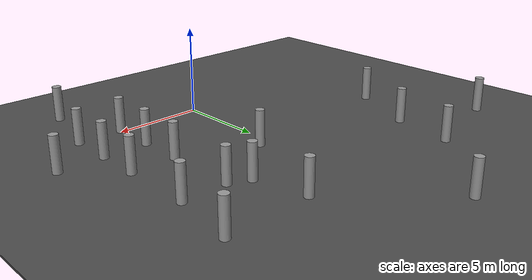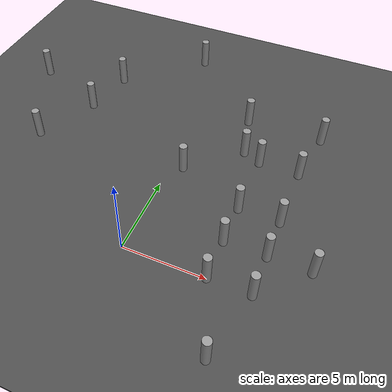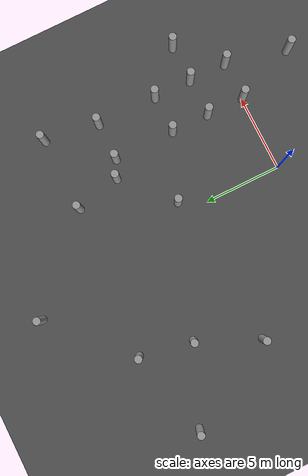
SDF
<sdf version="1.6">
 <world name="default">
  <model name="ground_plane">
   <static>1</static>
   <link name="link">
    <collision name="collision">
     <geometry><plane><normal>0 0 1</normal><size>100 100</size></plane></geometry>
     <surface><friction><ode><mu>100</mu><mu2>50</mu2></ode></friction></surface>
    </collision>
    <visual name="visual">
     <cast_shadows>0</cast_shadows>
     <geometry><plane><normal>0 0 1</normal><size>100 100</size></plane></geometry>
     <material>
      <script><uri>file://media/materials/scripts/gazebo.material</uri><name>Gazebo/Grey</name></script>
     </material>
    </visual>
   </link>
  </model>
  <model name="asphalt_plane_0">
   <link name="link">
    <inertial>
     <mass>1</mass>
     <inertia><ixx>1</ixx><ixy>0</ixy><ixz>0</ixz><iyy>1</iyy><iyz>0</iyz><izz>1</izz></inertia>
    </inertial>
    <visual name="visual">
     <cast_shadows>0</cast_shadows>
     <geometry><box><size>100 100 0.1</size></box></geometry>
     <material>
      <script>
       <uri>model://asphalt_plane/materials/scripts</uri>
       <uri>model://asphalt_plane/materials/textures</uri>
       <name>vrc/asphalt</name>
      </script>
      <ambient>0.5 0.5 0.5 1</ambient>
      <diffuse>0.5 0.5 0.5 1</diffuse>
      <specular>0.2 0.2 0.2 1</specular>
      <emissive>0 0 0 1</emissive>
      <shader type="vertex"><normal_map>__default__</normal_map></shader>
     </material>
    </visual>
    <collision name="collision">
     <geometry><box><size>100 100 0.1</size></box></geometry>
     <surface>
      <friction>
       <ode><mu>1</mu><mu2>1</mu2><fdir1>0 0 0</fdir1><slip1>0</slip1><slip2>0</slip2></ode>
       <torsional>
        <coefficient>1</coefficient>
        <patch_radius>0</patch_radius>
        <surface_radius>0</surface_radius>
        <use_patch_radius>1</use_patch_radius>
        <ode><slip>0</slip></ode>
       </torsional>
      </friction>
      <bounce><restitution_coefficient>0</restitution_coefficient><threshold>1e+06</threshold></bounce>
      <contact>
       <collide_without_contact>0</collide_without_contact>
       <collide_without_contact_bitmask>1</collide_without_contact_bitmask>
       <collide_bitmask>1</collide_bitmask>
       <ode>
        <soft_cfm>0</soft_cfm>
        <soft_erp>0.2</soft_erp>
        <kp>1e+13</kp>
        <kd>1</kd>
        <max_vel>0.01</max_vel>
        <min_depth>0</min_depth>
       </ode>
       <bullet>
        <split_impulse>1</split_impulse>
        <split_impulse_penetration_threshold>-0.01</split_impulse_penetration_threshold>
        <soft_cfm>0</soft_cfm>
        <soft_erp>0.2</soft_erp>
        <kp>1e+13</kp>
        <kd>1</kd>
       </bullet>
      </contact>
     </surface>
    </collision>
   </link>
   <static>1</static>
   <pose>-0.137833 0.204655 0 0 -0 0</pose>
  </model>
  <model name="vps_sim_obstacle">
   <link name="link">
    <inertial>
     <mass>1</mass>
     <inertia><ixx>0.145833</ixx><ixy>0</ixy><ixz>0</ixz><iyy>0.145833</iyy><iyz>0</iyz><izz>0.125</izz></inertia>
    </inertial>
    <visual name="visual">
     <geometry><cylinder><radius>0.25</radius><length>2</length></cylinder></geometry>
     <material>
      <script><name>Gazebo/Grey</name><uri>file://media/materials/scripts/gazebo.material</uri></script>
      <ambient>0.3 0.3 0.3 1</ambient>
      <diffuse>0.7 0.7 0.7 1</diffuse>
      <specular>0.01 0.01 0.01 1</specular>
      <emissive>0 0 0 1</emissive>
      <shader type="vertex"><normal_map>__default__</normal_map></shader>
     </material>
    </visual>
    <collision name="collision">
     <geometry><cylinder><radius>0.25</radius><length>2</length></cylinder></geometry>
     <surface>
      <friction>
       <ode><mu>1</mu><mu2>1</mu2><fdir1>0 0 0</fdir1><slip1>0</slip1><slip2>0</slip2></ode>
       <torsional>
        <coefficient>1</coefficient>
        <patch_radius>0</patch_radius>
        <surface_radius>0</surface_radius>
        <use_patch_radius>1</use_patch_radius>
        <ode><slip>0</slip></ode>
       </torsional>
      </friction>
      <bounce><restitution_coefficient>0</restitution_coefficient><threshold>1e+06</threshold></bounce>
      <contact>
       <collide_without_contact>0</collide_without_contact>
       <collide_without_contact_bitmask>1</collide_without_contact_bitmask>
       <collide_bitmask>1</collide_bitmask>
       <ode>
        <soft_cfm>0</soft_cfm>
        <soft_erp>0.2</soft_erp>
        <kp>1e+13</kp>
        <kd>1</kd>
        <max_vel>0.01</max_vel>
        <min_depth>0</min_depth>
       </ode>
       <bullet>
        <split_impulse>1</split_impulse>
        <split_impulse_penetration_threshold>-0.01</split_impulse_penetration_threshold>
        <soft_cfm>0</soft_cfm>
        <soft_erp>0.2</soft_erp>
        <kp>1e+13</kp>
        <kd>1</kd>
       </bullet>
      </contact>
     </surface>
    </collision>
   </link>
   <static>0</static>
   <pose>5.00167 -0.001811 1.05001 -1.9e-05 8e-06 0.033451</pose>
  </model>
  <model name="vps_sim_obstacle_1">
   <link name="link">
    <inertial>
     <mass>1</mass>
     <inertia><ixx>0.145833</ixx><ixy>0</ixy><ixz>0</ixz><iyy>0.145833</iyy><iyz>0</iyz><izz>0.125</izz></inertia>
    </inertial>
    <visual name="visual">
     <geometry><cylinder><radius>0.25</radius><length>2</length></cylinder></geometry>
     <material>
      <script><name>Gazebo/Grey</name><uri>file://media/materials/scripts/gazebo.material</uri></script>
      <ambient>0.3 0.3 0.3 1</ambient>
      <diffuse>0.7 0.7 0.7 1</diffuse>
      <specular>0.01 0.01 0.01 1</specular>
      <emissive>0 0 0 1</emissive>
      <shader type="vertex"><normal_map>__default__</normal_map></shader>
     </material>
    </visual>
    <collision name="collision">
     <geometry><cylinder><radius>0.25</radius><length>2</length></cylinder></geometry>
     <surface>
      <friction>
       <ode><mu>1</mu><mu2>1</mu2><fdir1>0 0 0</fdir1><slip1>0</slip1><slip2>0</slip2></ode>
       <torsional>
        <coefficient>1</coefficient>
        <patch_radius>0</patch_radius>
        <surface_radius>0</surface_radius>
        <use_patch_radius>1</use_patch_radius>
        <ode><slip>0</slip></ode>
       </torsional>
      </friction>
      <bounce><restitution_coefficient>0</restitution_coefficient><threshold>1e+06</threshold></bounce>
      <contact>
       <collide_without_contact>0</collide_without_contact>
       <collide_without_contact_bitmask>1</collide_without_contact_bitmask>
       <collide_bitmask>1</collide_bitmask>
       <ode>
        <soft_cfm>0</soft_cfm>
        <soft_erp>0.2</soft_erp>
        <kp>1e+13</kp>
        <kd>1</kd>
        <max_vel>0.01</max_vel>
        <min_depth>0</min_depth>
       </ode>
       <bullet>
        <split_impulse>1</split_impulse>
        <split_impulse_penetration_threshold>-0.01</split_impulse_penetration_threshold>
        <soft_cfm>0</soft_cfm>
        <soft_erp>0.2</soft_erp>
        <kp>1e+13</kp>
        <kd>1</kd>
       </bullet>
      </contact>
     </surface>
    </collision>
   </link>
   <static>0</static>
   <pose>5.00232 8.99749 1.04999 -2.7e-05 1.8e-05 0.034468</pose>
  </model>
  <model name="vps_sim_obstacle_2">
   <link name="link">
    <inertial>
     <mass>1</mass>
     <inertia><ixx>0.145833</ixx><ixy>0</ixy><ixz>0</ixz><iyy>0.145833</iyy><iyz>0</iyz><izz>0.125</izz></inertia>
    </inertial>
    <visual name="visual">
     <geometry><cylinder><radius>0.25</radius><length>2</length></cylinder></geometry>
     <material>
      <script><name>Gazebo/Grey</name><uri>file://media/materials/scripts/gazebo.material</uri></script>
      <ambient>0.3 0.3 0.3 1</ambient>
      <diffuse>0.7 0.7 0.7 1</diffuse>
      <specular>0.01 0.01 0.01 1</specular>
      <emissive>0 0 0 1</emissive>
      <shader type="vertex"><normal_map>__default__</normal_map></shader>
     </material>
    </visual>
    <collision name="collision">
     <geometry><cylinder><radius>0.25</radius><length>2</length></cylinder></geometry>
     <surface>
      <friction>
       <ode><mu>1</mu><mu2>1</mu2><fdir1>0 0 0</fdir1><slip1>0</slip1><slip2>0</slip2></ode>
       <torsional>
        <coefficient>1</coefficient>
        <patch_radius>0</patch_radius>
        <surface_radius>0</surface_radius>
        <use_patch_radius>1</use_patch_radius>
        <ode><slip>0</slip></ode>
       </torsional>
      </friction>
      <bounce><restitution_coefficient>0</restitution_coefficient><threshold>1e+06</threshold></bounce>
      <contact>
       <collide_without_contact>0</collide_without_contact>
       <collide_without_contact_bitmask>1</collide_without_contact_bitmask>
       <collide_bitmask>1</collide_bitmask>
       <ode>
        <soft_cfm>0</soft_cfm>
        <soft_erp>0.2</soft_erp>
        <kp>1e+13</kp>
        <kd>1</kd>
        <max_vel>0.01</max_vel>
        <min_depth>0</min_depth>
       </ode>
       <bullet>
        <split_impulse>1</split_impulse>
        <split_impulse_penetration_threshold>-0.01</split_impulse_penetration_threshold>
        <soft_cfm>0</soft_cfm>
        <soft_erp>0.2</soft_erp>
        <kp>1e+13</kp>
        <kd>1</kd>
       </bullet>
      </contact>
     </surface>
    </collision>
   </link>
   <static>0</static>
   <pose>7.50166 -0.001786 1.04996 -1e-06 3e-06 0.0403</pose>
  </model>
  <model name="vps_sim_obstacle_6">
   <link name="link">
    <inertial>
     <mass>1</mass>
     <inertia><ixx>0.145833</ixx><ixy>0</ixy><ixz>0</ixz><iyy>0.145833</iyy><iyz>0</iyz><izz>0.125</izz></inertia>
    </inertial>
    <visual name="visual">
     <geometry><cylinder><radius>0.25</radius><length>2</length></cylinder></geometry>
     <material>
      <script><name>Gazebo/Grey</name><uri>file://media/materials/scripts/gazebo.material</uri></script>
      <ambient>0.3 0.3 0.3 1</ambient>
      <diffuse>0.7 0.7 0.7 1</diffuse>
      <specular>0.01 0.01 0.01 1</specular>
      <emissive>0 0 0 1</emissive>
      <shader type="vertex"><normal_map>__default__</normal_map></shader>
     </material>
    </visual>
    <collision name="collision">
     <geometry><cylinder><radius>0.25</radius><length>2</length></cylinder></geometry>
     <surface>
      <friction>
       <ode><mu>1</mu><mu2>1</mu2><fdir1>0 0 0</fdir1><slip1>0</slip1><slip2>0</slip2></ode>
       <torsional>
        <coefficient>1</coefficient>
        <patch_radius>0</patch_radius>
        <surface_radius>0</surface_radius>
        <use_patch_radius>1</use_patch_radius>
        <ode><slip>0</slip></ode>
       </torsional>
      </friction>
      <bounce><restitution_coefficient>0</restitution_coefficient><threshold>1e+06</threshold></bounce>
      <contact>
       <collide_without_contact>0</collide_without_contact>
       <collide_without_contact_bitmask>1</collide_without_contact_bitmask>
       <collide_bitmask>1</collide_bitmask>
       <ode>
        <soft_cfm>0</soft_cfm>
        <soft_erp>0.2</soft_erp>
        <kp>1e+13</kp>
        <kd>1</kd>
        <max_vel>0.01</max_vel>
        <min_depth>0</min_depth>
       </ode>
       <bullet>
        <split_impulse>1</split_impulse>
        <split_impulse_penetration_threshold>-0.01</split_impulse_penetration_threshold>
        <soft_cfm>0</soft_cfm>
        <soft_erp>0.2</soft_erp>
        <kp>1e+13</kp>
        <kd>1</kd>
       </bullet>
      </contact>
     </surface>
    </collision>
   </link>
   <static>0</static>
   <pose>5.00177 2.49792 1.04997 -1.6e-05 2e-05 0.032816</pose>
  </model>
  <model name="vps_sim_obstacle_7">
   <link name="link">
    <inertial>
     <mass>1</mass>
     <inertia><ixx>0.145833</ixx><ixy>0</ixy><ixz>0</ixz><iyy>0.145833</iyy><iyz>0</iyz><izz>0.125</izz></inertia>
    </inertial>
    <visual name="visual">
     <geometry><cylinder><radius>0.25</radius><length>2</length></cylinder></geometry>
     <material>
      <script><name>Gazebo/Grey</name><uri>file://media/materials/scripts/gazebo.material</uri></script>
      <ambient>0.3 0.3 0.3 1</ambient>
      <diffuse>0.7 0.7 0.7 1</diffuse>
      <specular>0.01 0.01 0.01 1</specular>
      <emissive>0 0 0 1</emissive>
      <shader type="vertex"><normal_map>__default__</normal_map></shader>
     </material>
    </visual>
    <collision name="collision">
     <geometry><cylinder><radius>0.25</radius><length>2</length></cylinder></geometry>
     <surface>
      <friction>
       <ode><mu>1</mu><mu2>1</mu2><fdir1>0 0 0</fdir1><slip1>0</slip1><slip2>0</slip2></ode>
       <torsional>
        <coefficient>1</coefficient>
        <patch_radius>0</patch_radius>
        <surface_radius>0</surface_radius>
        <use_patch_radius>1</use_patch_radius>
        <ode><slip>0</slip></ode>
       </torsional>
      </friction>
      <bounce><restitution_coefficient>0</restitution_coefficient><threshold>1e+06</threshold></bounce>
      <contact>
       <collide_without_contact>0</collide_without_contact>
       <collide_without_contact_bitmask>1</collide_without_contact_bitmask>
       <collide_bitmask>1</collide_bitmask>
       <ode>
        <soft_cfm>0</soft_cfm>
        <soft_erp>0.2</soft_erp>
        <kp>1e+13</kp>
        <kd>1</kd>
        <max_vel>0.01</max_vel>
        <min_depth>0</min_depth>
       </ode>
       <bullet>
        <split_impulse>1</split_impulse>
        <split_impulse_penetration_threshold>-0.01</split_impulse_penetration_threshold>
        <soft_cfm>0</soft_cfm>
        <soft_erp>0.2</soft_erp>
        <kp>1e+13</kp>
        <kd>1</kd>
       </bullet>
      </contact>
     </surface>
    </collision>
   </link>
   <static>0</static>
   <pose>7.50156 2.49795 1.05 0 6e-06 0.041498</pose>
  </model>
  <model name="vps_sim_obstacle_8">
   <link name="link">
    <inertial>
     <mass>1</mass>
     <inertia><ixx>0.145833</ixx><ixy>0</ixy><ixz>0</ixz><iyy>0.145833</iyy><iyz>0</iyz><izz>0.125</izz></inertia>
    </inertial>
    <visual name="visual">
     <geometry><cylinder><radius>0.25</radius><length>2</length></cylinder></geometry>
     <material>
      <script><name>Gazebo/Grey</name><uri>file://media/materials/scripts/gazebo.material</uri></script>
      <ambient>0.3 0.3 0.3 1</ambient>
      <diffuse>0.7 0.7 0.7 1</diffuse>
      <specular>0.01 0.01 0.01 1</specular>
      <emissive>0 0 0 1</emissive>
      <shader type="vertex"><normal_map>__default__</normal_map></shader>
     </material>
    </visual>
    <collision name="collision">
     <geometry><cylinder><radius>0.25</radius><length>2</length></cylinder></geometry>
     <surface>
      <friction>
       <ode><mu>1</mu><mu2>1</mu2><fdir1>0 0 0</fdir1><slip1>0</slip1><slip2>0</slip2></ode>
       <torsional>
        <coefficient>1</coefficient>
        <patch_radius>0</patch_radius>
        <surface_radius>0</surface_radius>
        <use_patch_radius>1</use_patch_radius>
        <ode><slip>0</slip></ode>
       </torsional>
      </friction>
      <bounce><restitution_coefficient>0</restitution_coefficient><threshold>1e+06</threshold></bounce>
      <contact>
       <collide_without_contact>0</collide_without_contact>
       <collide_without_contact_bitmask>1</collide_without_contact_bitmask>
       <collide_bitmask>1</collide_bitmask>
       <ode>
        <soft_cfm>0</soft_cfm>
        <soft_erp>0.2</soft_erp>
        <kp>1e+13</kp>
        <kd>1</kd>
        <max_vel>0.01</max_vel>
        <min_depth>0</min_depth>
       </ode>
       <bullet>
        <split_impulse>1</split_impulse>
        <split_impulse_penetration_threshold>-0.01</split_impulse_penetration_threshold>
        <soft_cfm>0</soft_cfm>
        <soft_erp>0.2</soft_erp>
        <kp>1e+13</kp>
        <kd>1</kd>
       </bullet>
      </contact>
     </surface>
    </collision>
   </link>
   <static>0</static>
   <pose>10.0016 2.49806 1.04998 7e-06 1e-06 0.045175</pose>
  </model>
  <model name="vps_sim_obstacle_11">
   <link name="link">
    <inertial>
     <mass>1</mass>
     <inertia><ixx>0.145833</ixx><ixy>0</ixy><ixz>0</ixz><iyy>0.145833</iyy><iyz>0</iyz><izz>0.125</izz></inertia>
    </inertial>
    <visual name="visual">
     <geometry><cylinder><radius>0.25</radius><length>2</length></cylinder></geometry>
     <material>
      <script><name>Gazebo/Grey</name><uri>file://media/materials/scripts/gazebo.material</uri></script>
      <ambient>0.3 0.3 0.3 1</ambient>
      <diffuse>0.7 0.7 0.7 1</diffuse>
      <specular>0.01 0.01 0.01 1</specular>
      <emissive>0 0 0 1</emissive>
      <shader type="vertex"><normal_map>__default__</normal_map></shader>
     </material>
    </visual>
    <collision name="collision">
     <geometry><cylinder><radius>0.25</radius><length>2</length></cylinder></geometry>
     <surface>
      <friction>
       <ode><mu>1</mu><mu2>1</mu2><fdir1>0 0 0</fdir1><slip1>0</slip1><slip2>0</slip2></ode>
       <torsional>
        <coefficient>1</coefficient>
        <patch_radius>0</patch_radius>
        <surface_radius>0</surface_radius>
        <use_patch_radius>1</use_patch_radius>
        <ode><slip>0</slip></ode>
       </torsional>
      </friction>
      <bounce><restitution_coefficient>0</restitution_coefficient><threshold>1e+06</threshold></bounce>
      <contact>
       <collide_without_contact>0</collide_without_contact>
       <collide_without_contact_bitmask>1</collide_without_contact_bitmask>
       <collide_bitmask>1</collide_bitmask>
       <ode>
        <soft_cfm>0</soft_cfm>
        <soft_erp>0.2</soft_erp>
        <kp>1e+13</kp>
        <kd>1</kd>
        <max_vel>0.01</max_vel>
        <min_depth>0</min_depth>
       </ode>
       <bullet>
        <split_impulse>1</split_impulse>
        <split_impulse_penetration_threshold>-0.01</split_impulse_penetration_threshold>
        <soft_cfm>0</soft_cfm>
        <soft_erp>0.2</soft_erp>
        <kp>1e+13</kp>
        <kd>1</kd>
       </bullet>
      </contact>
     </surface>
    </collision>
   </link>
   <static>0</static>
   <pose>5.00194 4.99772 1.04996 -4e-06 4e-06 0.019612</pose>
  </model>
  <model name="vps_sim_obstacle_12">
   <link name="link">
    <inertial>
     <mass>1</mass>
     <inertia><ixx>0.145833</ixx><ixy>0</ixy><ixz>0</ixz><iyy>0.145833</iyy><iyz>0</iyz><izz>0.125</izz></inertia>
    </inertial>
    <visual name="visual">
     <geometry><cylinder><radius>0.25</radius><length>2</length></cylinder></geometry>
     <material>
      <script><name>Gazebo/Grey</name><uri>file://media/materials/scripts/gazebo.material</uri></script>
      <ambient>0.3 0.3 0.3 1</ambient>
      <diffuse>0.7 0.7 0.7 1</diffuse>
      <specular>0.01 0.01 0.01 1</specular>
      <emissive>0 0 0 1</emissive>
      <shader type="vertex"><normal_map>__default__</normal_map></shader>
     </material>
    </visual>
    <collision name="collision">
     <geometry><cylinder><radius>0.25</radius><length>2</length></cylinder></geometry>
     <surface>
      <friction>
       <ode><mu>1</mu><mu2>1</mu2><fdir1>0 0 0</fdir1><slip1>0</slip1><slip2>0</slip2></ode>
       <torsional>
        <coefficient>1</coefficient>
        <patch_radius>0</patch_radius>
        <surface_radius>0</surface_radius>
        <use_patch_radius>1</use_patch_radius>
        <ode><slip>0</slip></ode>
       </torsional>
      </friction>
      <bounce><restitution_coefficient>0</restitution_coefficient><threshold>1e+06</threshold></bounce>
      <contact>
       <collide_without_contact>0</collide_without_contact>
       <collide_without_contact_bitmask>1</collide_without_contact_bitmask>
       <collide_bitmask>1</collide_bitmask>
       <ode>
        <soft_cfm>0</soft_cfm>
        <soft_erp>0.2</soft_erp>
        <kp>1e+13</kp>
        <kd>1</kd>
        <max_vel>0.01</max_vel>
        <min_depth>0</min_depth>
       </ode>
       <bullet>
        <split_impulse>1</split_impulse>
        <split_impulse_penetration_threshold>-0.01</split_impulse_penetration_threshold>
        <soft_cfm>0</soft_cfm>
        <soft_erp>0.2</soft_erp>
        <kp>1e+13</kp>
        <kd>1</kd>
       </bullet>
      </contact>
     </surface>
    </collision>
   </link>
   <static>0</static>
   <pose>7.50185 4.99791 1.05001 -1.7e-05 2.3e-05 0.033569</pose>
  </model>
  <model name="vps_sim_obstacle_16">
   <link name="link">
    <inertial>
     <mass>1</mass>
     <inertia><ixx>0.145833</ixx><ixy>0</ixy><ixz>0</ixz><iyy>0.145833</iyy><iyz>0</iyz><izz>0.125</izz></inertia>
    </inertial>
    <visual name="visual">
     <geometry><cylinder><radius>0.25</radius><length>2</length></cylinder></geometry>
     <material>
      <script><name>Gazebo/Grey</name><uri>file://media/materials/scripts/gazebo.material</uri></script>
      <ambient>0.3 0.3 0.3 1</ambient>
      <diffuse>0.7 0.7 0.7 1</diffuse>
      <specular>0.01 0.01 0.01 1</specular>
      <emissive>0 0 0 1</emissive>
      <shader type="vertex"><normal_map>__default__</normal_map></shader>
     </material>
    </visual>
    <collision name="collision">
     <geometry><cylinder><radius>0.25</radius><length>2</length></cylinder></geometry>
     <surface>
      <friction>
       <ode><mu>1</mu><mu2>1</mu2><fdir1>0 0 0</fdir1><slip1>0</slip1><slip2>0</slip2></ode>
       <torsional>
        <coefficient>1</coefficient>
        <patch_radius>0</patch_radius>
        <surface_radius>0</surface_radius>
        <use_patch_radius>1</use_patch_radius>
        <ode><slip>0</slip></ode>
       </torsional>
      </friction>
      <bounce><restitution_coefficient>0</restitution_coefficient><threshold>1e+06</threshold></bounce>
      <contact>
       <collide_without_contact>0</collide_without_contact>
       <collide_without_contact_bitmask>1</collide_without_contact_bitmask>
       <collide_bitmask>1</collide_bitmask>
       <ode>
        <soft_cfm>0</soft_cfm>
        <soft_erp>0.2</soft_erp>
        <kp>1e+13</kp>
        <kd>1</kd>
        <max_vel>0.01</max_vel>
        <min_depth>0</min_depth>
       </ode>
       <bullet>
        <split_impulse>1</split_impulse>
        <split_impulse_penetration_threshold>-0.01</split_impulse_penetration_threshold>
        <soft_cfm>0</soft_cfm>
        <soft_erp>0.2</soft_erp>
        <kp>1e+13</kp>
        <kd>1</kd>
       </bullet>
      </contact>
     </surface>
    </collision>
   </link>
   <static>0</static>
   <pose>3.85675 9.50876 1.05001 -2.2e-05 1e-05 0.050136</pose>
  </model>
  <model name="vps_sim_obstacle_19">
   <link name="link">
    <inertial>
     <mass>1</mass>
     <inertia><ixx>0.145833</ixx><ixy>0</ixy><ixz>0</ixz><iyy>0.145833</iyy><iyz>0</iyz><izz>0.125</izz></inertia>
    </inertial>
    <visual name="visual">
     <geometry><cylinder><radius>0.25</radius><length>2</length></cylinder></geometry>
     <material>
      <script><name>Gazebo/Grey</name><uri>file://media/materials/scripts/gazebo.material</uri></script>
      <ambient>0.3 0.3 0.3 1</ambient>
      <diffuse>0.7 0.7 0.7 1</diffuse>
      <specular>0.01 0.01 0.01 1</specular>
      <emissive>0 0 0 1</emissive>
      <shader type="vertex"><normal_map>__default__</normal_map></shader>
     </material>
    </visual>
    <collision name="collision">
     <geometry><cylinder><radius>0.25</radius><length>2</length></cylinder></geometry>
     <surface>
      <friction>
       <ode><mu>1</mu><mu2>1</mu2><fdir1>0 0 0</fdir1><slip1>0</slip1><slip2>0</slip2></ode>
       <torsional>
        <coefficient>1</coefficient>
        <patch_radius>0</patch_radius>
        <surface_radius>0</surface_radius>
        <use_patch_radius>1</use_patch_radius>
        <ode><slip>0</slip></ode>
       </torsional>
      </friction>
      <bounce><restitution_coefficient>0</restitution_coefficient><threshold>1e+06</threshold></bounce>
      <contact>
       <collide_without_contact>0</collide_without_contact>
       <collide_without_contact_bitmask>1</collide_without_contact_bitmask>
       <collide_bitmask>1</collide_bitmask>
       <ode>
        <soft_cfm>0</soft_cfm>
        <soft_erp>0.2</soft_erp>
        <kp>1e+13</kp>
        <kd>1</kd>
        <max_vel>0.01</max_vel>
        <min_depth>0</min_depth>
       </ode>
       <bullet>
        <split_impulse>1</split_impulse>
        <split_impulse_penetration_threshold>-0.01</split_impulse_penetration_threshold>
        <soft_cfm>0</soft_cfm>
        <soft_erp>0.2</soft_erp>
        <kp>1e+13</kp>
        <kd>1</kd>
       </bullet>
      </contact>
     </surface>
    </collision>
   </link>
   <static>0</static>
   <pose>8.07231 12.5299 1.05 -5e-06 4e-06 0.050836</pose>
  </model>
  <model name="vps_sim_obstacle_21">
   <link name="link">
    <inertial>
     <mass>1</mass>
     <inertia><ixx>0.145833</ixx><ixy>0</ixy><ixz>0</ixz><iyy>0.145833</iyy><iyz>0</iyz><izz>0.125</izz></inertia>
    </inertial>
    <visual name="visual">
     <geometry><cylinder><radius>0.25</radius><length>2</length></cylinder></geometry>
     <material>
      <script><name>Gazebo/Grey</name><uri>file://media/materials/scripts/gazebo.material</uri></script>
      <ambient>0.3 0.3 0.3 1</ambient>
      <diffuse>0.7 0.7 0.7 1</diffuse>
      <specular>0.01 0.01 0.01 1</specular>
      <emissive>0 0 0 1</emissive>
      <shader type="vertex"><normal_map>__default__</normal_map></shader>
     </material>
    </visual>
    <collision name="collision">
     <geometry><cylinder><radius>0.25</radius><length>2</length></cylinder></geometry>
     <surface>
      <friction>
       <ode><mu>1</mu><mu2>1</mu2><fdir1>0 0 0</fdir1><slip1>0</slip1><slip2>0</slip2></ode>
       <torsional>
        <coefficient>1</coefficient>
        <patch_radius>0</patch_radius>
        <surface_radius>0</surface_radius>
        <use_patch_radius>1</use_patch_radius>
        <ode><slip>0</slip></ode>
       </torsional>
      </friction>
      <bounce><restitution_coefficient>0</restitution_coefficient><threshold>1e+06</threshold></bounce>
      <contact>
       <collide_without_contact>0</collide_without_contact>
       <collide_without_contact_bitmask>1</collide_without_contact_bitmask>
       <collide_bitmask>1</collide_bitmask>
       <ode>
        <soft_cfm>0</soft_cfm>
        <soft_erp>0.2</soft_erp>
        <kp>1e+13</kp>
        <kd>1</kd>
        <max_vel>0.01</max_vel>
        <min_depth>0</min_depth>
       </ode>
       <bullet>
        <split_impulse>1</split_impulse>
        <split_impulse_penetration_threshold>-0.01</split_impulse_penetration_threshold>
        <soft_cfm>0</soft_cfm>
        <soft_erp>0.2</soft_erp>
        <kp>1e+13</kp>
        <kd>1</kd>
       </bullet>
      </contact>
     </surface>
    </collision>
   </link>
   <static>0</static>
   <pose>3.16782 12.4281 1.04998 -4e-06 1.8e-05 0.051868</pose>
  </model>
  <model name="vps_sim_obstacle_40">
   <link name="link">
    <inertial>
     <mass>1</mass>
     <inertia><ixx>0.145833</ixx><ixy>0</ixy><ixz>0</ixz><iyy>0.145833</iyy><iyz>0</iyz><izz>0.125</izz></inertia>
    </inertial>
    <visual name="visual">
     <geometry><cylinder><radius>0.25</radius><length>2</length></cylinder></geometry>
     <material>
      <script><name>Gazebo/Grey</name><uri>file://media/materials/scripts/gazebo.material</uri></script>
      <ambient>0.3 0.3 0.3 1</ambient>
      <diffuse>0.7 0.7 0.7 1</diffuse>
      <specular>0.01 0.01 0.01 1</specular>
      <emissive>0 0 0 1</emissive>
      <shader type="vertex"><normal_map>__default__</normal_map></shader>
     </material>
    </visual>
    <collision name="collision">
     <geometry><cylinder><radius>0.25</radius><length>2</length></cylinder></geometry>
     <surface>
      <friction>
       <ode><mu>1</mu><mu2>1</mu2><fdir1>0 0 0</fdir1><slip1>0</slip1><slip2>0</slip2></ode>
       <torsional>
        <coefficient>1</coefficient>
        <patch_radius>0</patch_radius>
        <surface_radius>0</surface_radius>
        <use_patch_radius>1</use_patch_radius>
        <ode><slip>0</slip></ode>
       </torsional>
      </friction>
      <bounce><restitution_coefficient>0</restitution_coefficient><threshold>1e+06</threshold></bounce>
      <contact>
       <collide_without_contact>0</collide_without_contact>
       <collide_without_contact_bitmask>1</collide_without_contact_bitmask>
       <collide_bitmask>1</collide_bitmask>
       <ode>
        <soft_cfm>0</soft_cfm>
        <soft_erp>0.2</soft_erp>
        <kp>1e+13</kp>
        <kd>1</kd>
        <max_vel>0.01</max_vel>
        <min_depth>0</min_depth>
       </ode>
       <bullet>
        <split_impulse>1</split_impulse>
        <split_impulse_penetration_threshold>-0.01</split_impulse_penetration_threshold>
        <soft_cfm>0</soft_cfm>
        <soft_erp>0.2</soft_erp>
        <kp>1e+13</kp>
        <kd>1</kd>
       </bullet>
      </contact>
     </surface>
    </collision>
   </link>
   <static>0</static>
   <pose>7.5231 8.98879 1.05001 -7e-06 -2e-05 0.053854</pose>
  </model>
  <model name="vps_sim_obstacle_42">
   <link name="link">
    <inertial>
     <mass>1</mass>
     <inertia><ixx>0.145833</ixx><ixy>0</ixy><ixz>0</ixz><iyy>0.145833</iyy><iyz>0</iyz><izz>0.125</izz></inertia>
    </inertial>
    <visual name="visual">
     <geometry><cylinder><radius>0.25</radius><length>2</length></cylinder></geometry>
     <material>
      <script><name>Gazebo/Grey</name><uri>file://media/materials/scripts/gazebo.material</uri></script>
      <ambient>0.3 0.3 0.3 1</ambient>
      <diffuse>0.7 0.7 0.7 1</diffuse>
      <specular>0.01 0.01 0.01 1</specular>
      <emissive>0 0 0 1</emissive>
      <shader type="vertex"><normal_map>__default__</normal_map></shader>
     </material>
    </visual>
    <collision name="collision">
     <geometry><cylinder><radius>0.25</radius><length>2</length></cylinder></geometry>
     <surface>
      <friction>
       <ode><mu>1</mu><mu2>1</mu2><fdir1>0 0 0</fdir1><slip1>0</slip1><slip2>0</slip2></ode>
       <torsional>
        <coefficient>1</coefficient>
        <patch_radius>0</patch_radius>
        <surface_radius>0</surface_radius>
        <use_patch_radius>1</use_patch_radius>
        <ode><slip>0</slip></ode>
       </torsional>
      </friction>
      <bounce><restitution_coefficient>0</restitution_coefficient><threshold>1e+06</threshold></bounce>
      <contact>
       <collide_without_contact>0</collide_without_contact>
       <collide_without_contact_bitmask>1</collide_without_contact_bitmask>
       <collide_bitmask>1</collide_bitmask>
       <ode>
        <soft_cfm>0</soft_cfm>
        <soft_erp>0.2</soft_erp>
        <kp>1e+13</kp>
        <kd>1</kd>
        <max_vel>0.01</max_vel>
        <min_depth>0</min_depth>
       </ode>
       <bullet>
        <split_impulse>1</split_impulse>
        <split_impulse_penetration_threshold>-0.01</split_impulse_penetration_threshold>
        <soft_cfm>0</soft_cfm>
        <soft_erp>0.2</soft_erp>
        <kp>1e+13</kp>
        <kd>1</kd>
       </bullet>
      </contact>
     </surface>
    </collision>
   </link>
   <static>0</static>
   <pose>6.5521 -4.029 1.04998 3e-06 7e-06 0.03074</pose>
  </model>
  <model name="vps_sim_obstacle_47">
   <link name="link">
    <inertial>
     <mass>1</mass>
     <inertia><ixx>0.145833</ixx><ixy>0</ixy><ixz>0</ixz><iyy>0.145833</iyy><iyz>0</iyz><izz>0.125</izz></inertia>
    </inertial>
    <visual name="visual">
     <geometry><cylinder><radius>0.25</radius><length>2</length></cylinder></geometry>
     <material>
      <script><name>Gazebo/Grey</name><uri>file://media/materials/scripts/gazebo.material</uri></script>
      <ambient>0.3 0.3 0.3 1</ambient>
      <diffuse>0.7 0.7 0.7 1</diffuse>
      <specular>0.01 0.01 0.01 1</specular>
      <emissive>0 0 0 1</emissive>
      <shader type="vertex"><normal_map>__default__</normal_map></shader>
     </material>
    </visual>
    <collision name="collision">
     <geometry><cylinder><radius>0.25</radius><length>2</length></cylinder></geometry>
     <surface>
      <friction>
       <ode><mu>1</mu><mu2>1</mu2><fdir1>0 0 0</fdir1><slip1>0</slip1><slip2>0</slip2></ode>
       <torsional>
        <coefficient>1</coefficient>
        <patch_radius>0</patch_radius>
        <surface_radius>0</surface_radius>
        <use_patch_radius>1</use_patch_radius>
        <ode><slip>0</slip></ode>
       </torsional>
      </friction>
      <bounce><restitution_coefficient>0</restitution_coefficient><threshold>1e+06</threshold></bounce>
      <contact>
       <collide_without_contact>0</collide_without_contact>
       <collide_without_contact_bitmask>1</collide_without_contact_bitmask>
       <collide_bitmask>1</collide_bitmask>
       <ode>
        <soft_cfm>0</soft_cfm>
        <soft_erp>0.2</soft_erp>
        <kp>1e+13</kp>
        <kd>1</kd>
        <max_vel>0.01</max_vel>
        <min_depth>0</min_depth>
       </ode>
       <bullet>
        <split_impulse>1</split_impulse>
        <split_impulse_penetration_threshold>-0.01</split_impulse_penetration_threshold>
        <soft_cfm>0</soft_cfm>
        <soft_erp>0.2</soft_erp>
        <kp>1e+13</kp>
        <kd>1</kd>
       </bullet>
      </contact>
     </surface>
    </collision>
   </link>
   <static>0</static>
   <pose>0.78724 6.72198 1.04998 -8e-06 6e-06 0.05052</pose>
  </model>
  <model name="vps_sim_obstacle_52">
   <link name="link">
    <inertial>
     <mass>1</mass>
     <inertia><ixx>0.145833</ixx><ixy>0</ixy><ixz>0</ixz><iyy>0.145833</iyy><iyz>0</iyz><izz>0.125</izz></inertia>
    </inertial>
    <visual name="visual">
     <geometry><cylinder><radius>0.25</radius><length>2</length></cylinder></geometry>
     <material>
      <script><name>Gazebo/Grey</name><uri>file://media/materials/scripts/gazebo.material</uri></script>
      <ambient>0.3 0.3 0.3 1</ambient>
      <diffuse>0.7 0.7 0.7 1</diffuse>
      <specular>0.01 0.01 0.01 1</specular>
      <emissive>0 0 0 1</emissive>
      <shader type="vertex"><normal_map>__default__</normal_map></shader>
     </material>
    </visual>
    <collision name="collision">
     <geometry><cylinder><radius>0.25</radius><length>2</length></cylinder></geometry>
     <surface>
      <friction>
       <ode><mu>1</mu><mu2>1</mu2><fdir1>0 0 0</fdir1><slip1>0</slip1><slip2>0</slip2></ode>
       <torsional>
        <coefficient>1</coefficient>
        <patch_radius>0</patch_radius>
        <surface_radius>0</surface_radius>
        <use_patch_radius>1</use_patch_radius>
        <ode><slip>0</slip></ode>
       </torsional>
      </friction>
      <bounce><restitution_coefficient>0</restitution_coefficient><threshold>1e+06</threshold></bounce>
      <contact>
       <collide_without_contact>0</collide_without_contact>
       <collide_without_contact_bitmask>1</collide_without_contact_bitmask>
       <collide_bitmask>1</collide_bitmask>
       <ode>
        <soft_cfm>0</soft_cfm>
        <soft_erp>0.2</soft_erp>
        <kp>1e+13</kp>
        <kd>1</kd>
        <max_vel>0.01</max_vel>
        <min_depth>0</min_depth>
       </ode>
       <bullet>
        <split_impulse>1</split_impulse>
        <split_impulse_penetration_threshold>-0.01</split_impulse_penetration_threshold>
        <soft_cfm>0</soft_cfm>
        <soft_erp>0.2</soft_erp>
        <kp>1e+13</kp>
        <kd>1</kd>
       </bullet>
      </contact>
     </surface>
    </collision>
   </link>
   <static>0</static>
   <pose>-9.15279 5.8474 1.05001 4e-06 4.2e-05 0.054815</pose>
  </model>
  <model name="vps_sim_obstacle_53">
   <link name="link">
    <inertial>
     <mass>1</mass>
     <inertia><ixx>0.145833</ixx><ixy>0</ixy><ixz>0</ixz><iyy>0.145833</iyy><iyz>0</iyz><izz>0.125</izz></inertia>
    </inertial>
    <visual name="visual">
     <geometry><cylinder><radius>0.25</radius><length>2</length></cylinder></geometry>
     <material>
      <script><name>Gazebo/Grey</name><uri>file://media/materials/scripts/gazebo.material</uri></script>
      <ambient>0.3 0.3 0.3 1</ambient>
      <diffuse>0.7 0.7 0.7 1</diffuse>
      <specular>0.01 0.01 0.01 1</specular>
      <emissive>0 0 0 1</emissive>
      <shader type="vertex"><normal_map>__default__</normal_map></shader>
     </material>
    </visual>
    <collision name="collision">
     <geometry><cylinder><radius>0.25</radius><length>2</length></cylinder></geometry>
     <surface>
      <friction>
       <ode><mu>1</mu><mu2>1</mu2><fdir1>0 0 0</fdir1><slip1>0</slip1><slip2>0</slip2></ode>
       <torsional>
        <coefficient>1</coefficient>
        <patch_radius>0</patch_radius>
        <surface_radius>0</surface_radius>
        <use_patch_radius>1</use_patch_radius>
        <ode><slip>0</slip></ode>
       </torsional>
      </friction>
      <bounce><restitution_coefficient>0</restitution_coefficient><threshold>1e+06</threshold></bounce>
      <contact>
       <collide_without_contact>0</collide_without_contact>
       <collide_without_contact_bitmask>1</collide_without_contact_bitmask>
       <collide_bitmask>1</collide_bitmask>
       <ode>
        <soft_cfm>0</soft_cfm>
        <soft_erp>0.2</soft_erp>
        <kp>1e+13</kp>
        <kd>1</kd>
        <max_vel>0.01</max_vel>
        <min_depth>0</min_depth>
       </ode>
       <bullet>
        <split_impulse>1</split_impulse>
        <split_impulse_penetration_threshold>-0.01</split_impulse_penetration_threshold>
        <soft_cfm>0</soft_cfm>
        <soft_erp>0.2</soft_erp>
        <kp>1e+13</kp>
        <kd>1</kd>
       </bullet>
      </contact>
     </surface>
    </collision>
   </link>
   <static>0</static>
   <pose>-12.2634 11.7895 1.05 2e-06 -2e-06 0.055798</pose>
  </model>
  <model name="vps_sim_obstacle_54">
   <link name="link">
    <inertial>
     <mass>1</mass>
     <inertia><ixx>0.145833</ixx><ixy>0</ixy><ixz>0</ixz><iyy>0.145833</iyy><iyz>0</iyz><izz>0.125</izz></inertia>
    </inertial>
    <visual name="visual">
     <geometry><cylinder><radius>0.25</radius><length>2</length></cylinder></geometry>
     <material>
      <script><name>Gazebo/Grey</name><uri>file://media/materials/scripts/gazebo.material</uri></script>
      <ambient>0.3 0.3 0.3 1</ambient>
      <diffuse>0.7 0.7 0.7 1</diffuse>
      <specular>0.01 0.01 0.01 1</specular>
      <emissive>0 0 0 1</emissive>
      <shader type="vertex"><normal_map>__default__</normal_map></shader>
     </material>
    </visual>
    <collision name="collision">
     <geometry><cylinder><radius>0.25</radius><length>2</length></cylinder></geometry>
     <surface>
      <friction>
       <ode><mu>1</mu><mu2>1</mu2><fdir1>0 0 0</fdir1><slip1>0</slip1><slip2>0</slip2></ode>
       <torsional>
        <coefficient>1</coefficient>
        <patch_radius>0</patch_radius>
        <surface_radius>0</surface_radius>
        <use_patch_radius>1</use_patch_radius>
        <ode><slip>0</slip></ode>
       </torsional>
      </friction>
      <bounce><restitution_coefficient>0</restitution_coefficient><threshold>1e+06</threshold></bounce>
      <contact>
       <collide_without_contact>0</collide_without_contact>
       <collide_without_contact_bitmask>1</collide_without_contact_bitmask>
       <collide_bitmask>1</collide_bitmask>
       <ode>
        <soft_cfm>0</soft_cfm>
        <soft_erp>0.2</soft_erp>
        <kp>1e+13</kp>
        <kd>1</kd>
        <max_vel>0.01</max_vel>
        <min_depth>0</min_depth>
       </ode>
       <bullet>
        <split_impulse>1</split_impulse>
        <split_impulse_penetration_threshold>-0.01</split_impulse_penetration_threshold>
        <soft_cfm>0</soft_cfm>
        <soft_erp>0.2</soft_erp>
        <kp>1e+13</kp>
        <kd>1</kd>
       </bullet>
      </contact>
     </surface>
    </collision>
   </link>
   <static>0</static>
   <pose>-6.71216 13.1301 1.05 -5e-06 -0 0.05507</pose>
  </model>
  <model name="vps_sim_obstacle_55">
   <link name="link">
    <inertial>
     <mass>1</mass>
     <inertia><ixx>0.145833</ixx><ixy>0</ixy><ixz>0</ixz><iyy>0.145833</iyy><iyz>0</iyz><izz>0.125</izz></inertia>
    </inertial>
    <visual name="visual">
     <geometry><cylinder><radius>0.25</radius><length>2</length></cylinder></geometry>
     <material>
      <script><name>Gazebo/Grey</name><uri>file://media/materials/scripts/gazebo.material</uri></script>
      <ambient>0.3 0.3 0.3 1</ambient>
      <diffuse>0.7 0.7 0.7 1</diffuse>
      <specular>0.01 0.01 0.01 1</specular>
      <emissive>0 0 0 1</emissive>
      <shader type="vertex"><normal_map>__default__</normal_map></shader>
     </material>
    </visual>
    <collision name="collision">
     <geometry><cylinder><radius>0.25</radius><length>2</length></cylinder></geometry>
     <surface>
      <friction>
       <ode><mu>1</mu><mu2>1</mu2><fdir1>0 0 0</fdir1><slip1>0</slip1><slip2>0</slip2></ode>
       <torsional>
        <coefficient>1</coefficient>
        <patch_radius>0</patch_radius>
        <surface_radius>0</surface_radius>
        <use_patch_radius>1</use_patch_radius>
        <ode><slip>0</slip></ode>
       </torsional>
      </friction>
      <bounce><restitution_coefficient>0</restitution_coefficient><threshold>1e+06</threshold></bounce>
      <contact>
       <collide_without_contact>0</collide_without_contact>
       <collide_without_contact_bitmask>1</collide_without_contact_bitmask>
       <collide_bitmask>1</collide_bitmask>
       <ode>
        <soft_cfm>0</soft_cfm>
        <soft_erp>0.2</soft_erp>
        <kp>1e+13</kp>
        <kd>1</kd>
        <max_vel>0.01</max_vel>
        <min_depth>0</min_depth>
       </ode>
       <bullet>
        <split_impulse>1</split_impulse>
        <split_impulse_penetration_threshold>-0.01</split_impulse_penetration_threshold>
        <soft_cfm>0</soft_cfm>
        <soft_erp>0.2</soft_erp>
        <kp>1e+13</kp>
        <kd>1</kd>
       </bullet>
      </contact>
     </surface>
    </collision>
   </link>
   <static>0</static>
   <pose>-2.03441 17.537 1.04997 -1.6e-05 2e-05 0.054636</pose>
  </model>
  <model name="vps_sim_obstacle_58">
   <link name="link">
    <inertial>
     <mass>1</mass>
     <inertia><ixx>0.145833</ixx><ixy>0</ixy><ixz>0</ixz><iyy>0.145833</iyy><iyz>0</iyz><izz>0.125</izz></inertia>
    </inertial>
    <visual name="visual">
     <geometry><cylinder><radius>0.25</radius><length>2</length></cylinder></geometry>
     <material>
      <script><name>Gazebo/Grey</name><uri>file://media/materials/scripts/gazebo.material</uri></script>
      <ambient>0.3 0.3 0.3 1</ambient>
      <diffuse>0.7 0.7 0.7 1</diffuse>
      <specular>0.01 0.01 0.01 1</specular>
      <emissive>0 0 0 1</emissive>
      <shader type="vertex"><normal_map>__default__</normal_map></shader>
     </material>
    </visual>
    <collision name="collision">
     <geometry><cylinder><radius>0.25</radius><length>2</length></cylinder></geometry>
     <surface>
      <friction>
       <ode><mu>1</mu><mu2>1</mu2><fdir1>0 0 0</fdir1><slip1>0</slip1><slip2>0</slip2></ode>
       <torsional>
        <coefficient>1</coefficient>
        <patch_radius>0</patch_radius>
        <surface_radius>0</surface_radius>
        <use_patch_radius>1</use_patch_radius>
        <ode><slip>0</slip></ode>
       </torsional>
      </friction>
      <bounce><restitution_coefficient>0</restitution_coefficient><threshold>1e+06</threshold></bounce>
      <contact>
       <collide_without_contact>0</collide_without_contact>
       <collide_without_contact_bitmask>1</collide_without_contact_bitmask>
       <collide_bitmask>1</collide_bitmask>
       <ode>
        <soft_cfm>0</soft_cfm>
        <soft_erp>0.2</soft_erp>
        <kp>1e+13</kp>
        <kd>1</kd>
        <max_vel>0.01</max_vel>
        <min_depth>0</min_depth>
       </ode>
       <bullet>
        <split_impulse>1</split_impulse>
        <split_impulse_penetration_threshold>-0.01</split_impulse_penetration_threshold>
        <soft_cfm>0</soft_cfm>
        <soft_erp>0.2</soft_erp>
        <kp>1e+13</kp>
        <kd>1</kd>
       </bullet>
      </contact>
     </surface>
    </collision>
   </link>
   <static>0</static>
   <pose>-7.34787 9.73608 1.04999 -1.3e-05 1.1e-05 0.063835</pose>
  </model>
 </world>
</sdf>
